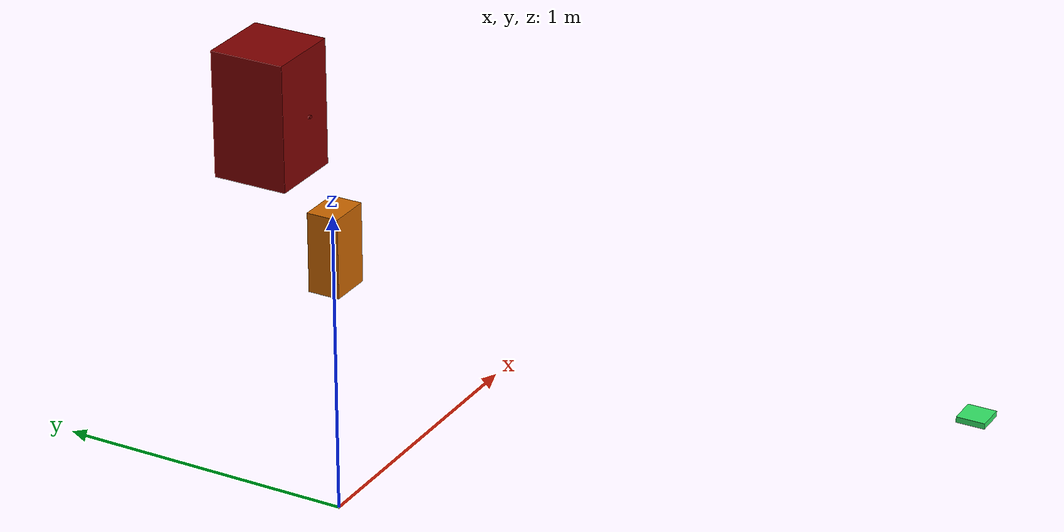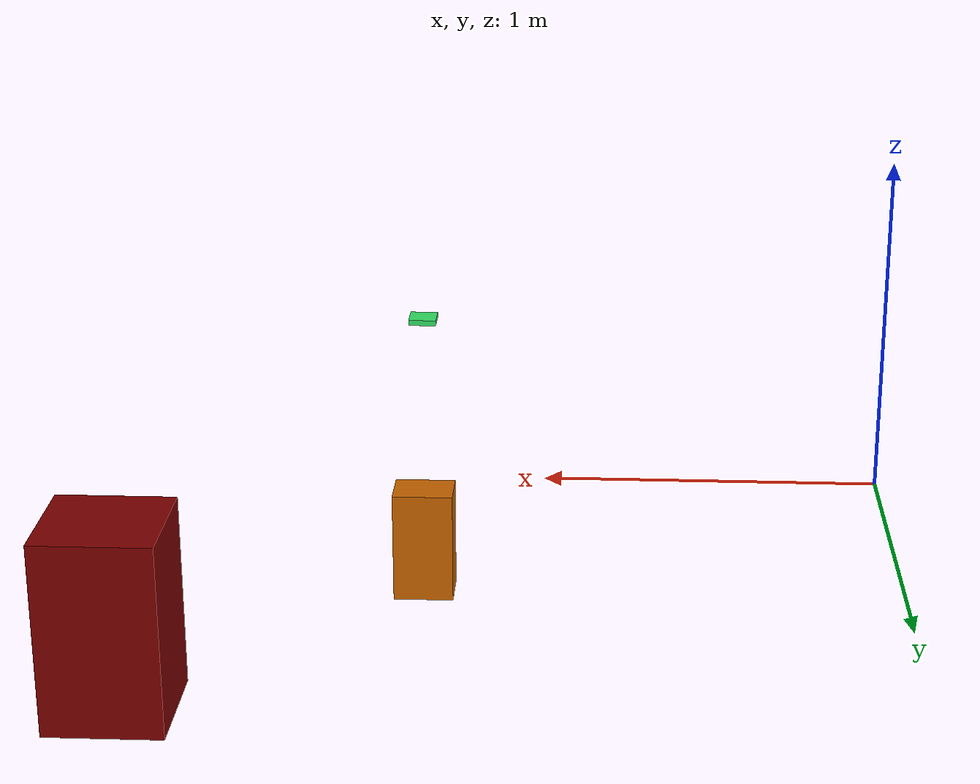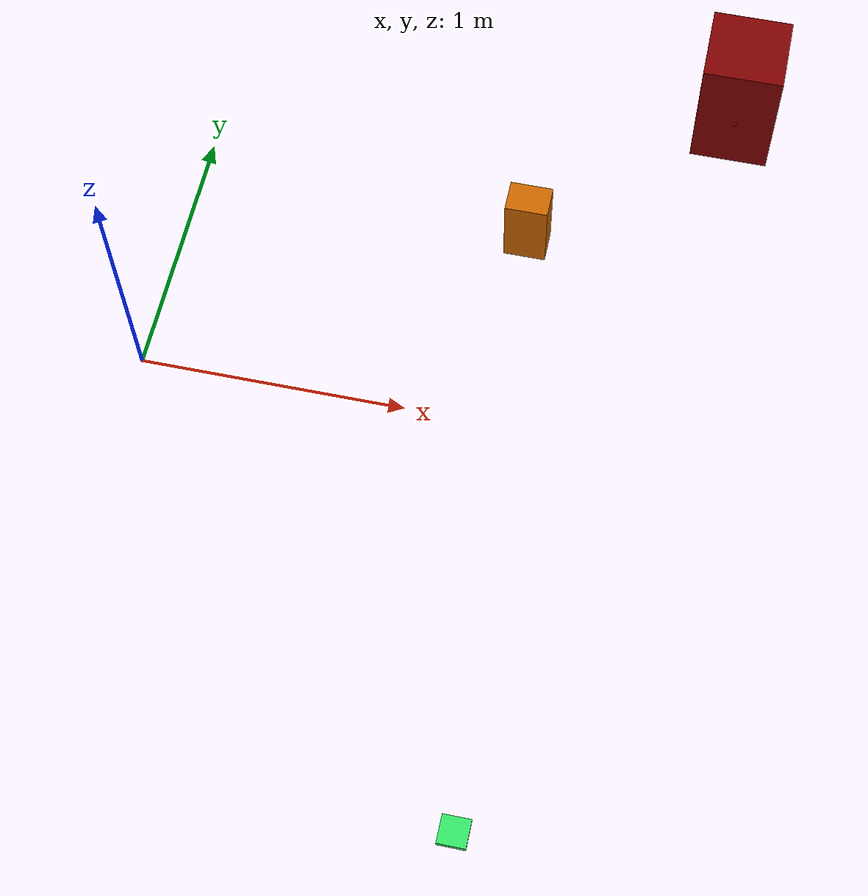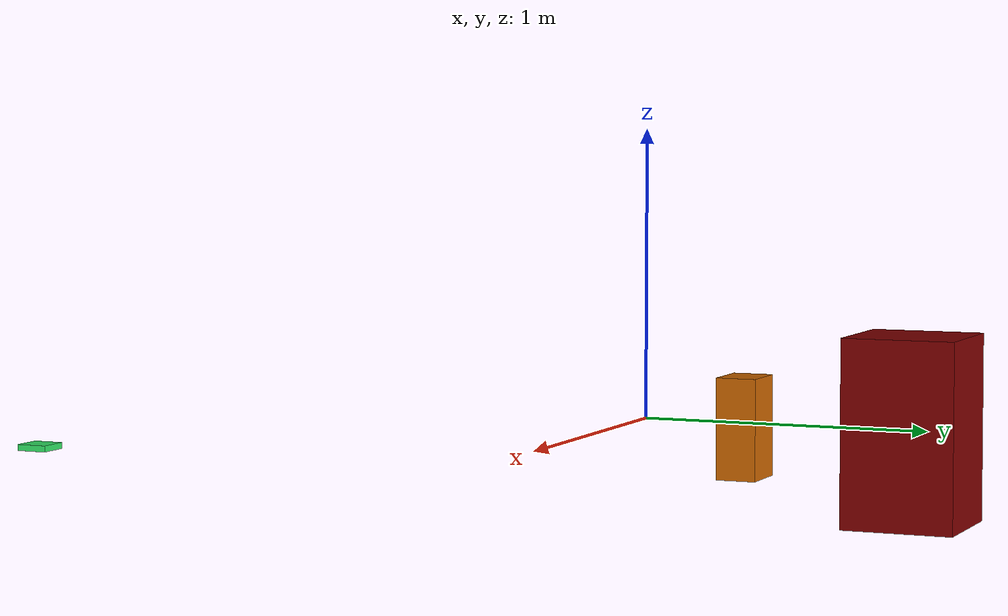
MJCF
<mujoco model="hose_obstacles">
    <include file="materials.xml"/>
    <include file="cc_sphere.xml"/>
    <worldbody>
        <body name="hose_obstacles" pos="0 0 0">
            <body name="vacuum" pos="2.0 1.5 0.0">
                <geom name="vacuum" type="box" pos="0 0 0.25" size="0.15 0.15 0.25" rgba="0.5 0 0 1"/>
            </body>
            <body name="attach" pos="2.0 1.33 0.25">
                <geom name="attach" type="box" size="0.005 0.005 0.005" rgba="0.5 0 0 1"/>
            </body>
            <body name="obstacle">
                <geom name="obstacle" type="box" pos="1.3 0.8 0.15" size="0.08 0.06 0.15" rgba="0.8 0.4 0 1"/>
            </body>
            <body name="mess" pos="1.5 -1.5 0">
                <geom name="mess" type="box" pos="0 0 0.0" size="0.05 0.05 0.01" rgba="0.2 0.9 0.4 1"/>
            </body>
        </body>
    </worldbody>
</mujoco>

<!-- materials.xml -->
<mujocoinclude>
    <asset>
        <texture file="textures/light-wood.png" type="2d" name="tex-light-wood"/>
        <texture file="textures/dark-wood.png" type="2d" name="tex-dark-wood"/>
        <texture file="textures/metal.png" type="2d" name="tex-metal"/>
        <texture file="textures/cream-plaster.png" type="2d" name="tex-cream-plaster"/>
        <texture file="textures/grass.png" type="2d" name="tex-grass"/>
        <material name="light-wood" reflectance="0" texrepeat="15 15" texture="tex-light-wood" texuniform="true"/>
        <material name="dark-wood" reflectance="0" texrepeat="5 5" texture="tex-dark-wood" texuniform="true"/>
        <material name="metal" reflectance="0" texrepeat="5 5" texture="tex-metal" texuniform="true"/>
        <material name="cream-plaster" reflectance="0" texrepeat="5 5" texture="tex-cream-plaster" texuniform="true"/>
        <material name="grass" reflectance="0" texrepeat="0.2 0.2" texture="tex-grass" texuniform="true"/>
    </asset>
</mujocoinclude>

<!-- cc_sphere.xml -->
<mujoco model="floor">
    <worldbody>
        <body pos="0 0 0" name="cc_sphere">
            <!-- To get the most precise results, the size here should be half of the resolution of the voxelgrid -->
            <geom type="sphere" name="cc_sphere" size="0.005" rgba="1 1 1 0.1"/>
            <joint type="free" name="cc_sphere" damping="0.1"/>
        </body>
    </worldbody>
</mujoco>
